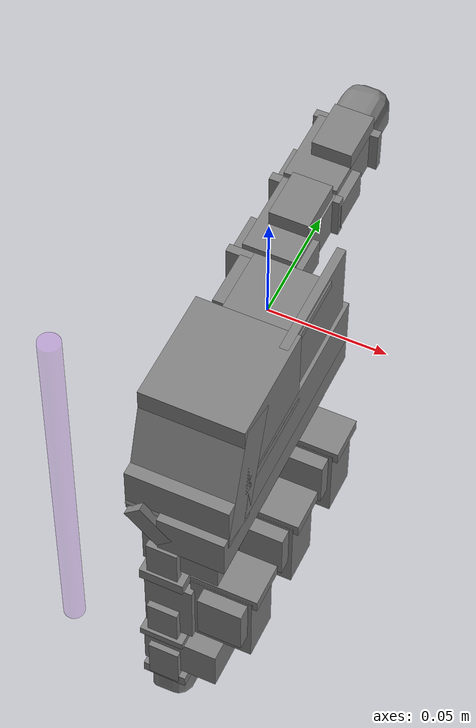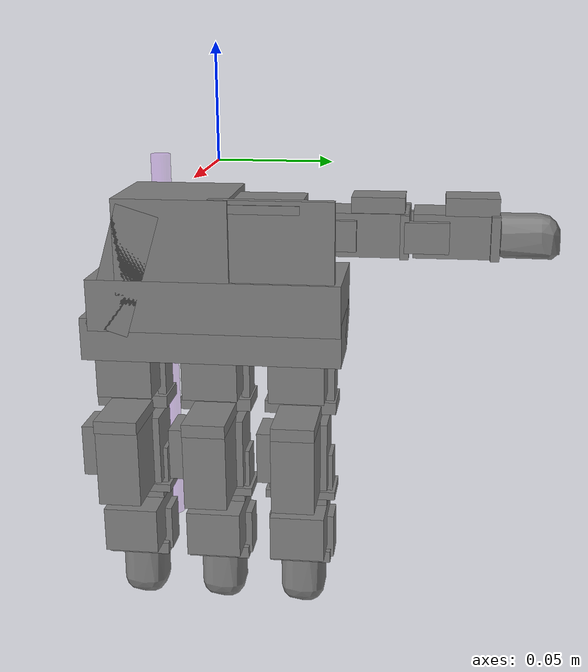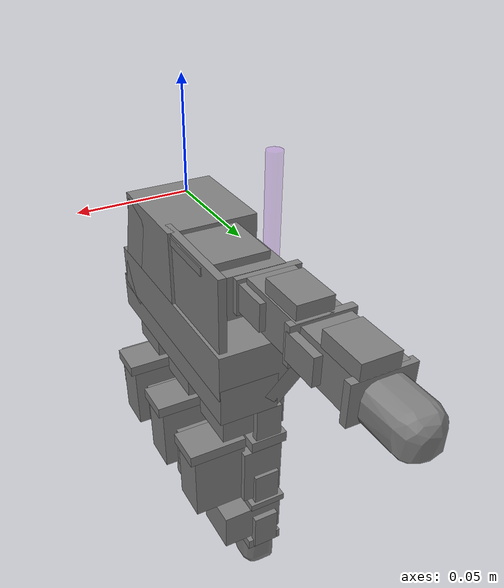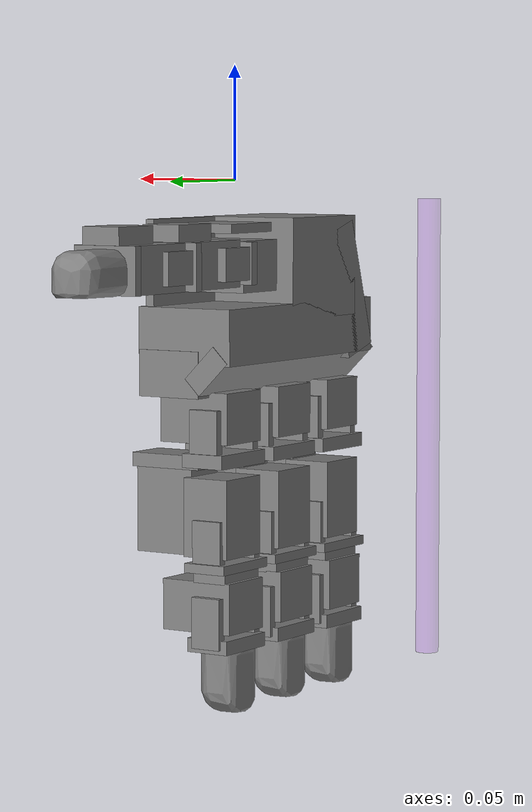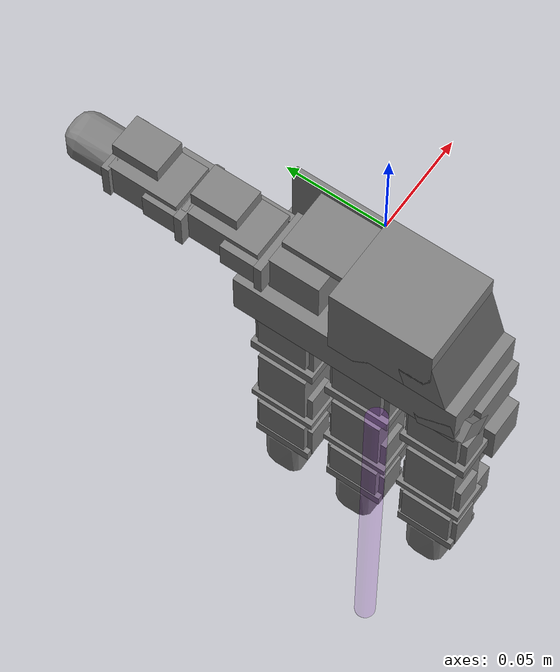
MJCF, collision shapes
<?xml version='1.0' encoding='utf-8'?>
<mujoco model="leap_rh">

  <asset>
    <material name="black" rgba="0.2 0.2 0.2 1" />

    <mesh name="palm" file="meshes/leap_hand/palm_right.stl" scale="0.9 0.9 0.9" />
    <mesh name="base" file="meshes/leap_hand/base.stl" scale="0.9 0.9 0.9" />
    <mesh name="proximal" file="meshes/leap_hand/proximal.stl" scale="0.9 0.9 0.9" />
    <mesh name="medial" file="meshes/leap_hand/medial.stl" scale="0.9 0.9 0.9" />
    <mesh name="distal" file="meshes/leap_hand/distal.stl" scale="0.9 0.9 0.9" />
    <mesh name="tip" file="meshes/leap_hand/tip.stl" scale="0.9 0.9 0.9" />
    <mesh name="thumb_base" file="meshes/leap_hand/thumb_base.stl" scale="0.9 0.9 0.9" />
    <mesh name="thumb_proximal" file="meshes/leap_hand/thumb_proximal.stl" scale="0.9 0.9 0.9" />
    <mesh name="thumb_distal" file="meshes/leap_hand/thumb_distal.stl" scale="0.9 0.9 0.9" />
    <mesh name="thumb_tip" file="meshes/leap_hand/thumb_tip.stl" scale="0.9 0.9 0.9" />
  </asset>

  <default>

   <geom solimp="0.9 0.95 0.001" solref="0.005 1" friction="0.8" />

    <position kp="3.0" />
    <joint damping="1.0" frictionloss="0.1" />

    <default class="visual">
      <geom group="1" type="mesh" contype="0" conaffinity="0" density="0" material="black" />
    </default>
    <default class="tip">
      <geom type="mesh" mesh="tip" friction="0.5" />
    </default>
    <default class="thumb_tip">
      <geom type="mesh" mesh="thumb_tip" friction="0.5" />
    </default>

    <default class="mcp">
      <joint pos="0.000000 0.000000 0.000000" axis="0 0 -1" limited="true" range="-0.314 2.23" damping="0.1" />
      <position ctrlrange="-0.314 2.23" />
    </default>
    <default class="rot">
      <joint pos="0.000000 0.000000 0.000000" axis="0 0 -1" limited="true" range="-1.047 1.047" damping="0.1" />
      <position ctrlrange="-1.047 1.047" />
    </default>
    <default class="pip">
      <joint pos="0.000000 0.000000 0.000000" axis="0 0 -1" limited="true" range="-0.506 1.885" damping="0.1" />
      <position ctrlrange="-0.506 1.885" />
    </default>
    <default class="dip">
      <joint pos="0.000000 0.000000 0.000000" axis="0 0 -1" limited="true" range="-0.366 2.042" damping="0.1" />
      <position ctrlrange="-0.366 2.042" />
    </default>
    <default class="thumb_cmc">
      <joint pos="0.000000 0.000000 0.000000" axis="0 0 -1" limited="true" range="-0.349 2.094" damping="0.1" />
      <position ctrlrange="-0.349 2.094" />
    </default>
    <default class="thumb_axl">
      <joint pos="0.000000 0.000000 0.000000" axis="0 0 -1" limited="true" range="-0.349 2.094" damping="0.1" />
      <position ctrlrange="-0.349 2.094" />
    </default>
    <default class="thumb_mcp">
      <joint pos="0.000000 0.000000 0.000000" axis="0 0 -1" limited="true" range="-0.47 2.443" damping="0.1" />
      <position ctrlrange="-0.47 2.443" />
    </default>
    <default class="thumb_ipl">
      <joint pos="0.000000 0.000000 0.000000" axis="0 0 -1" limited="true" range="-1.34 1.88" damping="0.1" />
      <position ctrlrange="-1.34 1.88" />
    </default>
  </default>

  <contact>

    <exclude body1="palm" body2="if_bs" />
    <exclude body1="palm" body2="mf_bs" />
    <exclude body1="palm" body2="rf_bs" />
    <exclude body1="palm" body2="th_mp" />

    <exclude body1="palm" body2="if_px" />
    <exclude body1="palm" body2="mf_px" />
    <exclude body1="palm" body2="rf_px" />
    <exclude body1="palm" body2="th_bs" />

    <exclude body1="palm" body2="if_md" />
    <exclude body1="palm" body2="mf_md" />
    <exclude body1="palm" body2="rf_md" />
    <exclude body1="palm" body2="th_px" />

    <exclude body1="if_bs" body2="mf_bs" />
    <exclude body1="if_bs" body2="rf_bs" />
    <exclude body1="mf_bs" body2="rf_bs" />

    <exclude body1="th_mp" body2="if_bs" />
    <exclude body1="th_mp" body2="mf_bs" />
    <exclude body1="th_mp" body2="rf_bs" />

  </contact>

  <actuator>

    <position name="if_mcp_act" joint="if_mcp" class="mcp" />
    <position name="if_rot_act" joint="if_rot" class="rot" />
    <position name="if_pip_act" joint="if_pip" class="pip" />
    <position name="if_dip_act" joint="if_dip" class="dip" />

    <position name="mf_mcp_act" joint="mf_mcp" class="mcp" />
    <position name="mf_rot_act" joint="mf_rot" class="rot" />
    <position name="mf_pip_act" joint="mf_pip" class="pip" />
    <position name="mf_dip_act" joint="mf_dip" class="dip" />

    <position name="rf_mcp_act" joint="rf_mcp" class="mcp" />
    <position name="rf_rot_act" joint="rf_rot" class="rot" />
    <position name="rf_pip_act" joint="rf_pip" class="pip" />
    <position name="rf_dip_act" joint="rf_dip" class="dip" />

    <position name="th_cmc_act" joint="th_cmc" class="thumb_cmc" />
    <position name="th_axl_act" joint="th_axl" class="thumb_axl" />
    <position name="th_mcp_act" joint="th_mcp" class="thumb_mcp" />
    <position name="th_ipl_act" joint="th_ipl" class="thumb_ipl" />
  </actuator>

  <sensor>
    <force name="force_ee" site="ft_frame" />
    <torque name="torque_ee" site="ft_frame" />

    <jointpos name="if_mcp_sensor" joint="if_mcp" />
    <jointpos name="if_rot_sensor" joint="if_rot" />
    <jointpos name="if_pip_sensor" joint="if_pip" />
    <jointpos name="if_dip_sensor" joint="if_dip" />

    <jointpos name="mf_mcp_sensor" joint="mf_mcp" />
    <jointpos name="mf_rot_sensor" joint="mf_rot" />
    <jointpos name="mf_pip_sensor" joint="mf_pip" />
    <jointpos name="mf_dip_sensor" joint="mf_dip" />

    <jointpos name="rf_mcp_sensor" joint="rf_mcp" />
    <jointpos name="rf_rot_sensor" joint="rf_rot" />
    <jointpos name="rf_pip_sensor" joint="rf_pip" />
    <jointpos name="rf_dip_sensor" joint="rf_dip" />

    <jointpos name="th_cmc_sensor" joint="th_cmc" />
    <jointpos name="th_axl_sensor" joint="th_axl" />
    <jointpos name="th_mcp_sensor" joint="th_mcp" />
    <jointpos name="th_ipl_sensor" joint="th_ipl" />
  </sensor>

  <worldbody>
    <body name="palm" pos="0.000000 0.027000 -0.108000" quat="0.7071068 0 0.7071068 0">

      <site name="ft_frame" pos="0.000000 -0.054000 0.000000" size="0.01 0.01 0.01" rgba="1 0 0 0" type="sphere" group="1" />
      <site name="grip_site" pos="0.000000 -0.072000 0.000000" size="0.01 0.01 0.01" rgba="1 0 0 0" type="sphere" group="1" />
      <site name="grip_site_cylinder" pos="0.000000 -0.072000 -0.072000" quat="0.707107 0 0.707107 0" size="0.005 .1" rgba=".627 .125 .941 .2" type="cylinder" group="1" />
      <inertial pos="-0.049542 -0.042914 -0.010227" quat="0.565586 0.427629 -0.574956 0.408254" mass="0.237" diaginertia="0.000407345 0.000304759 0.000180736" />
      <geom name="palm_visual" pos="-0.018000 0.023175 -0.031230" quat="1 0 0 0" class="visual" mesh="palm" />
      <geom name="palm_collision_1" size="0.011 0.013 0.017" pos="-0.008100 0.007200 -0.009900" type="box" />
      <geom name="palm_collision_2" size="0.011 0.013 0.017" pos="-0.008100 -0.033300 -0.009900" type="box" />
      <geom name="palm_collision_3" size="0.011 0.013 0.017" pos="-0.008100 -0.073800 -0.009900" type="box" />
      <geom name="palm_collision_4" size="0.029 0.01 0.023" pos="-0.059400 -0.070200 -0.010350" quat="0.989016 0 0 -0.147806" type="box" />
      <geom name="palm_collision_5" size="0.01 0.06 0.015" pos="-0.027000 -0.031500 -0.002700" type="box" />
      <geom name="palm_collision_6" size="0.005 0.06 0.01" pos="-0.028800 -0.031500 -0.021600" quat="0.923956 0 0.382499 0" type="box" />
      <geom name="palm_collision_7" size="0.012 0.058 0.023" pos="-0.043200 -0.029700 -0.010350" type="box" />
      <geom name="palm_collision_8" size="0.022 0.026 0.023" pos="-0.070200 -0.047700 -0.010350" type="box" />
      <geom name="palm_collision_9" size="0.002 0.018 0.017" pos="-0.088200 -0.008100 -0.005400" type="box" />
      <geom name="palm_collision_10" size="0.022 0.028 0.002" pos="-0.070200 -0.002700 0.009000" type="box" />

      <body name="if_bs" pos="-0.006300 0.020700 -0.016830" quat="0.500003 0.5 0.5 -0.499997">
        <inertial pos="-0.022516 0.033882 0.016359" quat="0.388092 0.677951 -0.247713 0.573067" mass="0.044" diaginertia="1.74972e-05 1.61504e-05 7.21342e-06" />
        <joint name="if_mcp" class="mcp" />
        <geom name="if_bs_visual" pos="0.007560 0.006930 0.013185" quat="1 0 0 0" class="visual" mesh="base" />
        <geom name="if_bs_collision_1" size="0.01 0.003 0.017" pos="0.000000 0.016200 0.013230" type="box" />
        <geom name="if_bs_collision_2" size="0.014 0.02 0.01" pos="-0.024300 0.037800 0.013500" type="box" />
        <geom name="if_bs_collision_3" size="0.017 0.003 0.01" pos="-0.023580 0.018000 0.013140" type="box" />
        <geom name="if_bs_collision_4" size="0.01 0.012 0.004" pos="-0.026550 0.031500 0.026100" type="box" />
        <geom name="if_bs_collision_5" size="0.007 0.01 0.002" pos="0.000000 0.004500 0.027000" type="box" />
        <geom name="if_bs_collision_6" size="0.007 0.01 0.002" pos="0.000000 0.004500 -0.000900" type="box" />

        <body name="if_px" pos="-0.010980 0.034290 0.013050" quat="0.500003 -0.5 -0.499997 0.5">
          <inertial pos="0.0075 -0.0002 -0.011" quat="0 0.707107 0 0.707107" mass="0.032" diaginertia="4.8853e-06 4.3733e-06 3.0933e-06" />
          <joint name="if_rot" class="rot" />
          <geom name="if_px_visual" pos="0.008640 0.000180 0.000630" quat="0.500003 -0.5 -0.5 -0.499997" class="visual" mesh="proximal" />
          <geom name="if_px_collision" size="0.017 0.013 0.011" pos="0.006750 -0.000180 -0.009900" type="box" />

          <body name="if_md" pos="0.013500 0.012870 -0.011700" quat="0.500003 0.5 -0.5 0.499997">
            <inertial pos="0.0054215 -0.029148 0.015" quat="0.687228 0.687228 0.166487 0.166487" mass="0.037" diaginertia="8.28004e-06 8.1598e-06 5.39516e-06" />
            <joint name="if_pip" class="pip" />
            <geom name="if_md_visual" pos="0.018990 -0.007560 0.008730" quat="2.67949e-08 -1 0 0" class="visual" mesh="medial" />
            <geom name="if_md_collision_1" size="0.008 0.003 0.013" pos="0.000000 -0.018000 0.013500" type="box" />
            <geom name="if_md_collision_2" size="0.01 0.002 0.017" pos="0.000000 -0.014400 0.013500" type="box" />
            <geom name="if_md_collision_3" size="0.007 0.01 0.002" pos="0.000000 -0.004050 0.027000" type="box" />
            <geom name="if_md_collision_4" size="0.007 0.01 0.002" pos="0.000000 -0.004050 0.000000" type="box" />
            <geom name="if_md_collision_5" size="0.017 0.011 0.013" pos="0.006750 -0.031500 0.013500" type="box" />

            <body name="if_ds" pos="0.000000 -0.032490 0.000180">
              <inertial pos="-0.0008794 -0.027019 0.014594" quat="0.702905 0.710643 -0.0212937 -0.0214203" mass="0.016" diaginertia="3.71863e-06 3.02396e-06 1.6518e-06" />
              <joint name="if_dip" class="dip" />
              <geom name="if_ds_visual" pos="0.011880 -0.005490 0.012960" quat="2.67949e-08 1 0 0" class="visual" mesh="distal" />
              <geom name="if_ds_collision_1" size="0.01 0.003 0.015" pos="0.000000 -0.015300 0.013500" type="box" />
              <geom name="if_ds_collision_2" size="0.007 0.011 0.002" pos="0.000000 -0.005400 0.027000" type="box" />
              <geom name="if_ds_collision_3" size="0.007 0.011 0.002" pos="0.000000 -0.005400 -0.000900" type="box" />

              <geom name="if_tip" class="tip" />
            </body>

          </body>
        </body>
      </body>

      <body name="mf_bs" pos="-0.006390 -0.020160 -0.016830" quat="0.500003 0.5 0.5 -0.499997">
        <inertial pos="-0.022516 0.033882 0.016359" quat="0.388092 0.677951 -0.247713 0.573067" mass="0.044" diaginertia="1.74972e-05 1.61504e-05 7.21342e-06" />
        <joint name="mf_mcp" class="mcp" />
        <geom name="mf_bs_visual" pos="0.007560 0.006930 0.013185" quat="1 0 0 0" class="visual" mesh="base" />
        <geom name="mf_bs_collision_1" size="0.01 0.003 0.017" pos="0.000000 0.016200 0.013230" type="box" />
        <geom name="mf_bs_collision_2" size="0.014 0.02 0.01" pos="-0.024300 0.037800 0.013500" type="box" />
        <geom name="mf_bs_collision_3" size="0.017 0.003 0.01" pos="-0.023580 0.018000 0.013140" type="box" />
        <geom name="mf_bs_collision_4" size="0.01 0.012 0.004" pos="-0.026550 0.031500 0.026100" type="box" />
        <geom name="mf_bs_collision_5" size="0.007 0.01 0.002" pos="0.000000 0.004500 0.027000" type="box" />
        <geom name="mf_bs_collision_6" size="0.007 0.01 0.002" pos="0.000000 0.004500 -0.000900" type="box" />

        <body name="mf_px" pos="-0.010980 0.034290 0.013050" quat="0.500003 -0.5 -0.499997 0.5">
          <inertial pos="0.0075 -0.0002 -0.011" quat="0 0.707107 0 0.707107" mass="0.032" diaginertia="4.8853e-06 4.3733e-06 3.0933e-06" />
          <joint name="mf_rot" class="rot" />
          <geom name="mf_px_visual" pos="0.008640 0.000270 0.000630" quat="0.500003 -0.5 -0.5 -0.499997" class="visual" mesh="proximal" />
          <geom name="mf_px_collision" size="0.017 0.013 0.011" pos="0.006750 -0.000180 -0.009900" type="box" />

          <body name="mf_md" pos="0.013500 0.012870 -0.011700" quat="0.500003 0.5 -0.5 0.499997">
            <inertial pos="0.0054215 -0.029148 0.015" quat="0.687228 0.687228 0.166487 0.166487" mass="0.037" diaginertia="8.28004e-06 8.1598e-06 5.39516e-06" />
            <joint name="mf_pip" class="pip" />
            <geom name="mf_md_visual" pos="0.018990 -0.007560 0.008730" quat="1.32679e-06 -1 0 0" class="visual" mesh="medial" />
            <geom name="mf_md_collision_1" size="0.008 0.003 0.013" pos="0.000000 -0.018000 0.013500" type="box" />
            <geom name="mf_md_collision_2" size="0.01 0.002 0.017" pos="0.000000 -0.014400 0.013500" type="box" />
            <geom name="mf_md_collision_3" size="0.007 0.01 0.002" pos="0.000000 -0.004050 0.027000" type="box" />
            <geom name="mf_md_collision_4" size="0.007 0.01 0.002" pos="0.000000 -0.004050 0.000000" type="box" />
            <geom name="mf_md_collision_5" size="0.017 0.011 0.013" pos="0.006750 -0.031500 0.013500" type="box" />

            <body name="mf_ds" pos="0.000000 -0.032490 0.000180">
              <inertial pos="-0.0008794 -0.027019 0.014594" quat="0.702905 0.710643 -0.0212937 -0.0214203" mass="0.016" diaginertia="3.71863e-06 3.02396e-06 1.6518e-06" />
              <joint name="mf_dip" class="dip" />
              <geom name="mf_ds_visual" pos="0.011880 -0.005490 0.013050" quat="1.32679e-06 1 0 0" class="visual" mesh="distal" />
              <geom name="mf_ds_collision_1" size="0.01 0.003 0.015" pos="0.000000 -0.015300 0.013500" type="box" />
              <geom name="mf_ds_collision_2" size="0.007 0.011 0.002" pos="0.000000 -0.005400 0.027000" type="box" />
              <geom name="mf_ds_collision_3" size="0.007 0.011 0.002" pos="0.000000 -0.005400 -0.000900" type="box" />

              <geom name="mf_tip" class="tip" />
            </body>

          </body>
        </body>
      </body>

      <body name="rf_bs" pos="-0.006381 -0.061020 -0.016830" quat="0.500003 0.5 0.5 -0.499997">
        <inertial pos="-0.022516 0.033882 0.016359" quat="0.388092 0.677951 -0.247713 0.573067" mass="0.044" diaginertia="1.74972e-05 1.61504e-05 7.21342e-06" />
        <joint name="rf_mcp" class="mcp" />
        <geom name="rf_bs_visual" pos="0.007560 0.006930 0.013185" quat="1 0 0 0" class="visual" mesh="base" />
        <geom name="rf_bs_collision_1" size="0.01 0.003 0.017" pos="0.000000 0.016200 0.013230" type="box" />
        <geom name="rf_bs_collision_2" size="0.014 0.02 0.01" pos="-0.024300 0.037800 0.013500" type="box" />
        <geom name="rf_bs_collision_3" size="0.017 0.003 0.01" pos="-0.023580 0.018000 0.013140" type="box" />
        <geom name="rf_bs_collision_4" size="0.01 0.012 0.004" pos="-0.026550 0.031500 0.026100" type="box" />
        <geom name="rf_bs_collision_5" size="0.007 0.01 0.002" pos="0.000000 0.004500 0.027000" type="box" />
        <geom name="rf_bs_collision_6" size="0.007 0.01 0.002" pos="0.000000 0.004500 -0.000900" type="box" />

        <body name="rf_px" pos="-0.010980 0.034290 0.013050" quat="0.500003 -0.5 -0.499997 0.5">
          <inertial pos="0.0075 -0.0002 -0.011" quat="0 0.707107 0 0.707107" mass="0.032" diaginertia="4.8853e-06 4.3733e-06 3.0933e-06" />
          <joint name="rf_rot" class="rot" />
          <geom name="rf_px_visual" pos="0.008640 0.000270 0.000630" quat="0.500003 -0.5 -0.5 -0.499997" class="visual" mesh="proximal" />
          <geom name="rf_px_collision" size="0.017 0.013 0.011" pos="0.006750 -0.000180 -0.009900" type="box" />

          <body name="rf_md" pos="0.013500 0.012870 -0.011700" quat="0.500003 0.5 -0.5 0.499997">
            <inertial pos="0.0054215 -0.029148 0.015" quat="0.687228 0.687228 0.166487 0.166487" mass="0.037" diaginertia="8.28004e-06 8.1598e-06 5.39516e-06" />
            <joint name="rf_pip" class="pip" />
            <geom name="rf_md_visual" pos="0.018990 -0.007560 0.008730" quat="1.32679e-06 -1 0 0" class="visual" mesh="medial" />
            <geom name="rf_md_collision_1" size="0.008 0.003 0.013" pos="0.000000 -0.018000 0.013500" type="box" />
            <geom name="rf_md_collision_2" size="0.01 0.002 0.017" pos="0.000000 -0.014400 0.013500" type="box" />
            <geom name="rf_md_collision_3" size="0.007 0.01 0.002" pos="0.000000 -0.004050 0.027000" type="box" />
            <geom name="rf_md_collision_4" size="0.007 0.01 0.002" pos="0.000000 -0.004050 0.000000" type="box" />
            <geom name="rf_md_collision_5" size="0.017 0.011 0.013" pos="0.006750 -0.031500 0.013500" type="box" />

            <body name="rf_ds" pos="0.000000 -0.032481 0.000180">
              <inertial pos="-0.0008794 -0.027019 0.014594" quat="0.702905 0.710643 -0.0212937 -0.0214203" mass="0.016" diaginertia="3.71863e-06 3.02396e-06 1.6518e-06" />
              <joint name="rf_dip" class="dip" />
              <geom name="rf_ds_visual" pos="0.011880 -0.005490 0.013050" quat="1.32679e-06 1 0 0" class="visual" mesh="distal" />
              <geom name="rf_ds_collision_1" size="0.01 0.003 0.015" pos="0.000000 -0.015300 0.013500" type="box" />
              <geom name="rf_ds_collision_2" size="0.007 0.011 0.002" pos="0.000000 -0.005400 0.027000" type="box" />
              <geom name="rf_ds_collision_3" size="0.007 0.011 0.002" pos="0.000000 -0.005400 -0.000900" type="box" />

              <geom name="rf_tip" class="tip" />
            </body>

          </body>
        </body>
      </body>

      <body name="th_mp" pos="-0.062370 -0.001080 -0.019440" quat="0.707109 0 0.707105 0">
        <inertial pos="0.0075 -0.0002 -0.011" quat="0 0.707107 0 0.707107" mass="0.032" diaginertia="4.8853e-06 4.3733e-06 3.0933e-06" />
        <joint name="th_cmc" class="thumb_cmc" />
        <geom name="th_mp_visual" pos="-0.004770 0.000270 0.000702" quat="0.500003 -0.5 -0.5 -0.499997" class="visual" mesh="proximal" />
        <geom name="th_mp_collision" size="0.017 0.013 0.011" pos="-0.006750 -0.000180 -0.009900" type="box" />

        <body name="th_bs" pos="0.000000 0.012870 -0.011700" quat="0.500003 0.5 -0.5 0.499997">
          <inertial pos="0 0 -0.0070806" quat="0.707107 0.707107 0 0" mass="0.003" diaginertia="6.1932e-07 5.351e-07 2.1516e-07" />
          <joint name="th_axl" class="thumb_axl" />
          <geom name="th_bs_visual" pos="0.010764 0.000000 -0.014220" quat="0.707109 0.707105 0 0" class="visual" mesh="thumb_base" />
          <geom name="th_bs_collision_1" size="0.009 0.0165 0.002" pos="0.000000 0.000000 -0.001350" type="box" />
          <geom name="th_bs_collision_2" size="0.007 0.002 0.01" pos="0.000000 -0.013500 -0.011700" type="box" />
          <geom name="th_bs_collision_3" size="0.007 0.002 0.01" pos="0.000000 0.013500 -0.011700" type="box" />

          <body name="th_px" pos="0.000000 0.013050 -0.015300" quat="0.707109 -0.707105 0 0">
            <inertial pos="-0.0020593 0.015912 -0.013733" quat="0.698518 0.697382 -0.104933 0.121324" mass="0.038" diaginertia="9.87104e-06 9.32653e-06 4.36203e-06" />
            <joint name="th_mcp" class="thumb_mcp" />
            <geom name="th_px_visual" pos="0.039510 0.052110 -0.007740" quat="1 0 0 0" class="visual" mesh="thumb_proximal" />
            <geom name="th_px_collision_1" size="0.01 0.02 0.012" pos="0.000000 0.009450 -0.012600" type="box" />
            <geom name="th_px_collision_2" size="0.01 0.002 0.016" pos="0.000000 0.027900 -0.013500" type="box" />
            <geom name="th_px_collision_3" size="0.007 0.01 0.002" pos="0.000000 0.037800 0.000900" type="box" />
            <geom name="th_px_collision_4" size="0.007 0.01 0.002" pos="0.000000 0.037800 -0.026100" type="box" />
            <geom name="th_px_collision_5" size="0.005 0.012 0.009" pos="-0.012150 0.015750 -0.010490" type="box" />

            <body name="th_ds" pos="0.000000 0.041940 0.000180" quat="1.32679e-06 0 0 1">
              <inertial pos="0.00096191 -0.024203 -0.014419" quat="0.35287 0.311272 -0.632839 0.614904" mass="0.049" diaginertia="2.08591e-05 2.0402e-05 4.71335e-06" />
              <joint name="th_ipl" class="thumb_ipl" />
              <geom name="th_ds_visual" pos="0.056250 0.070560 0.044010" quat="1 0 0 0" class="visual" mesh="thumb_distal" />
              <geom name="th_ds_collision_1" size="0.01 0.018 0.012" pos="0.000000 -0.007650 -0.013500" type="box" />
              <geom name="th_ds_collision_2" size="0.01 0.002 0.015" pos="0.000000 -0.026100 -0.012600" type="box" />
              <geom name="th_ds_collision_3" size="0.004 0.012 0.009" pos="0.013500 -0.015750 -0.010350" type="box" />

              <geom name="th_tip" class="thumb_tip" />
            </body>

          </body>
        </body>
      </body>

    </body>
  </worldbody>
</mujoco>
